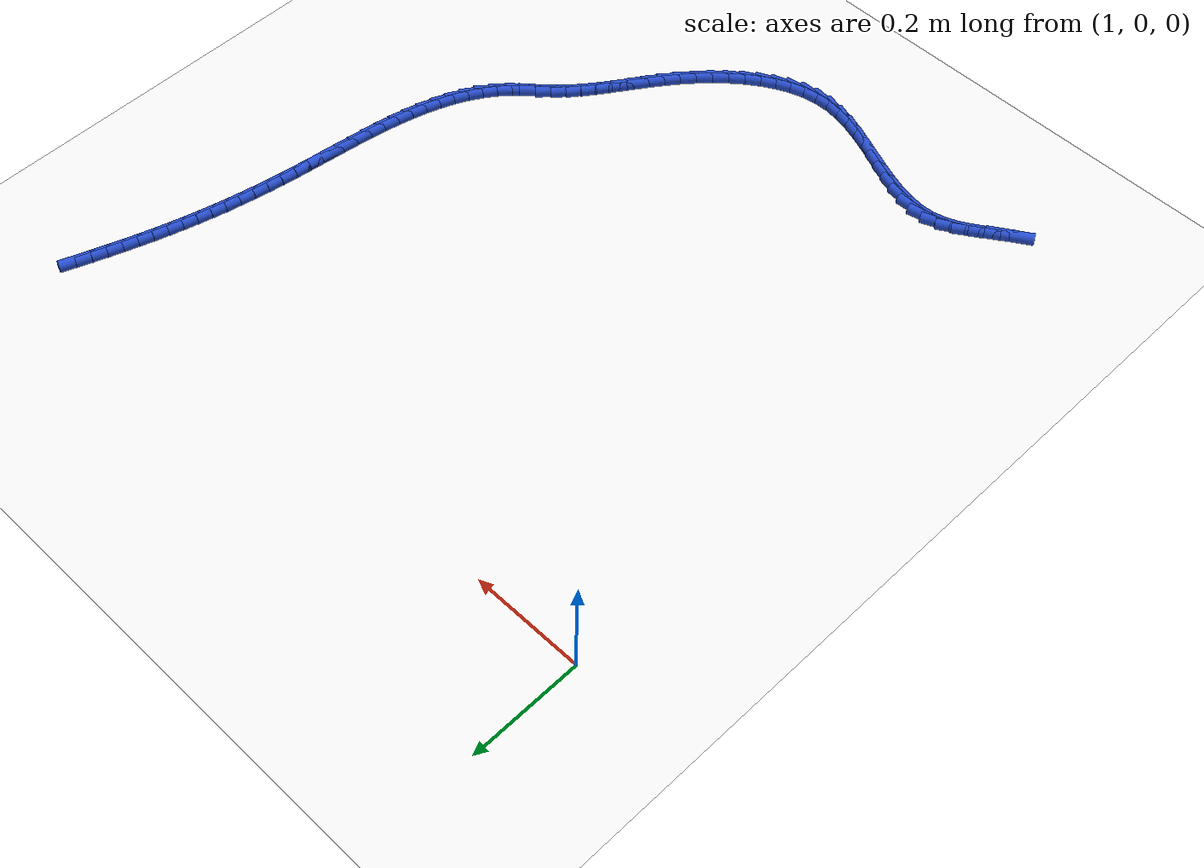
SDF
<sdf version="1.6">
 <world name="default">
  <model name="ground_plane">
   <static>1</static>
   <link name="link">
    <collision name="collision">
     <geometry><plane><normal>0 0 1</normal><size>100 100</size></plane></geometry>
     <surface><friction><ode><mu>100</mu><mu2>50</mu2></ode></friction></surface>
    </collision>
    <visual name="visual">
     <cast_shadows>0</cast_shadows>
     <geometry><plane><normal>0 0 1</normal><size>100 100</size></plane></geometry>
     <material>
      <script><uri>file://media/materials/scripts/gazebo.material</uri><name>Gazebo/WhiteGlow</name></script>
     </material>
    </visual>
   </link>
  </model>
  <model name="line">
   <link name="link_139">
    <pose>2.0839311883430423 0.039502360963267404 0.01 0 1.57 1.2172083180339355</pose>
    <collision name="collision">
     <geometry><cylinder><radius>0.01</radius><length>0.08</length></cylinder></geometry>
    </collision>
    <visual name="visual">
     <material>
      <script><name>Gazebo/Blue</name><uri>file://media/materials/scripts/gazebo.material</uri></script>
     </material>
     <geometry><cylinder><radius>0.01</radius><length>0.08</length></cylinder></geometry>
    </visual>
   </link>
   <link name="link_140">
    <pose>2.074587826958365 0.014188454468545168 0.01 0 1.57 1.228908637623293</pose>
    <collision name="collision">
     <geometry><cylinder><radius>0.01</radius><length>0.08</length></cylinder></geometry>
    </collision>
    <visual name="visual">
     <material>
      <script><name>Gazebo/Blue</name><uri>file://media/materials/scripts/gazebo.material</uri></script>
     </material>
     <geometry><cylinder><radius>0.01</radius><length>0.08</length></cylinder></geometry>
    </visual>
   </link>
   <link name="link_141">
    <pose>2.065661966261659 -0.010893897130642212 0.01 0 1.57 1.2415533934183682</pose>
    <collision name="collision">
     <geometry><cylinder><radius>0.01</radius><length>0.08</length></cylinder></geometry>
    </collision>
    <visual name="visual">
     <material>
      <script><name>Gazebo/Blue</name><uri>file://media/materials/scripts/gazebo.material</uri></script>
     </material>
     <geometry><cylinder><radius>0.01</radius><length>0.08</length></cylinder></geometry>
    </visual>
   </link>
   <link name="link_142">
    <pose>2.057153631445824 -0.035795427142687665 0.01 0 1.57 1.2551022464581947</pose>
    <collision name="collision">
     <geometry><cylinder><radius>0.01</radius><length>0.08</length></cylinder></geometry>
    </collision>
    <visual name="visual">
     <material>
      <script><name>Gazebo/Blue</name><uri>file://media/materials/scripts/gazebo.material</uri></script>
     </material>
     <geometry><cylinder><radius>0.01</radius><length>0.08</length></cylinder></geometry>
    </visual>
   </link>
   <link name="link_143">
    <pose>2.0490628477037536 -0.06056686887598703 0.01 0 1.57 1.269501331391532</pose>
    <collision name="collision">
     <geometry><cylinder><radius>0.01</radius><length>0.08</length></cylinder></geometry>
    </collision>
    <visual name="visual">
     <material>
      <script><name>Gazebo/Blue</name><uri>file://media/materials/scripts/gazebo.material</uri></script>
     </material>
     <geometry><cylinder><radius>0.01</radius><length>0.08</length></cylinder></geometry>
    </visual>
   </link>
   <link name="link_144">
    <pose>2.0413896402283447 -0.08525895563893326 0.01 0 1.57 1.28468347285391</pose>
    <collision name="collision">
     <geometry><cylinder><radius>0.01</radius><length>0.08</length></cylinder></geometry>
    </collision>
    <visual name="visual">
     <material>
      <script><name>Gazebo/Blue</name><uri>file://media/materials/scripts/gazebo.material</uri></script>
     </material>
     <geometry><cylinder><radius>0.01</radius><length>0.08</length></cylinder></geometry>
    </visual>
   </link>
   <link name="link_145">
    <pose>2.034134034212493 -0.10992242073992214 0.01 0 1.57 1.3005688774060336</pose>
    <collision name="collision">
     <geometry><cylinder><radius>0.01</radius><length>0.08</length></cylinder></geometry>
    </collision>
    <visual name="visual">
     <material>
      <script><name>Gazebo/Blue</name><uri>file://media/materials/scripts/gazebo.material</uri></script>
     </material>
     <geometry><cylinder><radius>0.01</radius><length>0.08</length></cylinder></geometry>
    </visual>
   </link>
   <link name="link_146">
    <pose>2.0272960548490957 -0.1346079974873467 0.01 0 1.57 1.3170663153617388</pose>
    <collision name="collision">
     <geometry><cylinder><radius>0.01</radius><length>0.08</length></cylinder></geometry>
    </collision>
    <visual name="visual">
     <material>
      <script><name>Gazebo/Blue</name><uri>file://media/materials/scripts/gazebo.material</uri></script>
     </material>
     <geometry><cylinder><radius>0.01</radius><length>0.08</length></cylinder></geometry>
    </visual>
   </link>
   <link name="link_147">
    <pose>2.0208757273310485 -0.15936641918960273 0.01 0 1.57 1.3340747741797732</pose>
    <collision name="collision">
     <geometry><cylinder><radius>0.01</radius><length>0.08</length></cylinder></geometry>
    </collision>
    <visual name="visual">
     <material>
      <script><name>Gazebo/Blue</name><uri>file://media/materials/scripts/gazebo.material</uri></script>
     </material>
     <geometry><cylinder><radius>0.01</radius><length>0.08</length></cylinder></geometry>
    </visual>
   </link>
   <link name="link_148">
    <pose>2.014873076851247 -0.1842484191550831 0.01 0 1.57 1.351485530064256</pose>
    <collision name="collision">
     <geometry><cylinder><radius>0.01</radius><length>0.08</length></cylinder></geometry>
    </collision>
    <visual name="visual">
     <material>
      <script><name>Gazebo/Blue</name><uri>file://media/materials/scripts/gazebo.material</uri></script>
     </material>
     <geometry><cylinder><radius>0.01</radius><length>0.08</length></cylinder></geometry>
    </visual>
   </link>
   <link name="link_149">
    <pose>2.009288128602588 -0.2093047306921838 0.01 0 1.57 1.3691845509254263</pose>
    <collision name="collision">
     <geometry><cylinder><radius>0.01</radius><length>0.08</length></cylinder></geometry>
    </collision>
    <visual name="visual">
     <material>
      <script><name>Gazebo/Blue</name><uri>file://media/materials/scripts/gazebo.material</uri></script>
     </material>
     <geometry><cylinder><radius>0.01</radius><length>0.08</length></cylinder></geometry>
    </visual>
   </link>
   <link name="link_150">
    <pose>2.0041209077779674 -0.23458608710929763 0.01 0 1.57 1.3869917826238396</pose>
    <collision name="collision">
     <geometry><cylinder><radius>0.01</radius><length>0.08</length></cylinder></geometry>
    </collision>
    <visual name="visual">
     <material>
      <script><name>Gazebo/Blue</name><uri>file://media/materials/scripts/gazebo.material</uri></script>
     </material>
     <geometry><cylinder><radius>0.01</radius><length>0.08</length></cylinder></geometry>
    </visual>
   </link>
   <link name="link_151">
    <pose>1.999369868092684 -0.2601426673180058 0.01 0 1.57 1.4039094417125835</pose>
    <collision name="collision">
     <geometry><cylinder><radius>0.01</radius><length>0.08</length></cylinder></geometry>
    </collision>
    <visual name="visual">
     <material>
      <script><name>Gazebo/Blue</name><uri>file://media/materials/scripts/gazebo.material</uri></script>
     </material>
     <geometry><cylinder><radius>0.01</radius><length>0.08</length></cylinder></geometry>
    </visual>
   </link>
   <link name="link_152">
    <pose>1.9950112716992983 -0.2860168213357964 0.01 0 1.57 1.4192197696473066</pose>
    <collision name="collision">
     <geometry><cylinder><radius>0.01</radius><length>0.08</length></cylinder></geometry>
    </collision>
    <visual name="visual">
     <material>
      <script><name>Gazebo/Blue</name><uri>file://media/materials/scripts/gazebo.material</uri></script>
     </material>
     <geometry><cylinder><radius>0.01</radius><length>0.08</length></cylinder></geometry>
    </visual>
   </link>
   <link name="link_153">
    <pose>1.991004949685243 -0.31224510251453746 0.01 0 1.57 1.4328808185727886</pose>
    <collision name="collision">
     <geometry><cylinder><radius>0.01</radius><length>0.08</length></cylinder></geometry>
    </collision>
    <visual name="visual">
     <material>
      <script><name>Gazebo/Blue</name><uri>file://media/materials/scripts/gazebo.material</uri></script>
     </material>
     <geometry><cylinder><radius>0.01</radius><length>0.08</length></cylinder></geometry>
    </visual>
   </link>
   <link name="link_154">
    <pose>1.987310346479679 -0.3388639277981015 0.01 0 1.57 1.4445927143120671</pose>
    <collision name="collision">
     <geometry><cylinder><radius>0.01</radius><length>0.08</length></cylinder></geometry>
    </collision>
    <visual name="visual">
     <material>
      <script><name>Gazebo/Blue</name><uri>file://media/materials/scripts/gazebo.material</uri></script>
     </material>
     <geometry><cylinder><radius>0.01</radius><length>0.08</length></cylinder></geometry>
    </visual>
   </link>
   <link name="link_155">
    <pose>1.983879989079087 -0.3659006012836262 0.01 0 1.57 1.4512804694159036</pose>
    <collision name="collision">
     <geometry><cylinder><radius>0.01</radius><length>0.08</length></cylinder></geometry>
    </collision>
    <visual name="visual">
     <material>
      <script><name>Gazebo/Blue</name><uri>file://media/materials/scripts/gazebo.material</uri></script>
     </material>
     <geometry><cylinder><radius>0.01</radius><length>0.08</length></cylinder></geometry>
    </visual>
   </link>
   <link name="link_156">
    <pose>1.9805915833133063 -0.39328385960028867 0.01 0 1.57 1.4512712602010862</pose>
    <collision name="collision">
     <geometry><cylinder><radius>0.01</radius><length>0.08</length></cylinder></geometry>
    </collision>
    <visual name="visual">
     <material>
      <script><name>Gazebo/Blue</name><uri>file://media/materials/scripts/gazebo.material</uri></script>
     </material>
     <geometry><cylinder><radius>0.01</radius><length>0.08</length></cylinder></geometry>
    </visual>
   </link>
   <link name="link_157">
    <pose>1.9772770932624175 -0.42088218038029657 0.01 0 1.57 1.4446937278622798</pose>
    <collision name="collision">
     <geometry><cylinder><radius>0.01</radius><length>0.08</length></cylinder></geometry>
    </collision>
    <visual name="visual">
     <material>
      <script><name>Gazebo/Blue</name><uri>file://media/materials/scripts/gazebo.material</uri></script>
     </material>
     <geometry><cylinder><radius>0.01</radius><length>0.08</length></cylinder></geometry>
    </visual>
   </link>
   <link name="link_158">
    <pose>1.9737678266540557 -0.44856317659414086 0.01 0 1.57 1.4315457862522618</pose>
    <collision name="collision">
     <geometry><cylinder><radius>0.01</radius><length>0.08</length></cylinder></geometry>
    </collision>
    <visual name="visual">
     <material>
      <script><name>Gazebo/Blue</name><uri>file://media/materials/scripts/gazebo.material</uri></script>
     </material>
     <geometry><cylinder><radius>0.01</radius><length>0.08</length></cylinder></geometry>
    </visual>
   </link>
   <link name="link_159">
    <pose>1.9698950912158568 -0.47619446121230924 0.01 0 1.57 1.4116783667775232</pose>
    <collision name="collision">
     <geometry><cylinder><radius>0.01</radius><length>0.08</length></cylinder></geometry>
    </collision>
    <visual name="visual">
     <material>
      <script><name>Gazebo/Blue</name><uri>file://media/materials/scripts/gazebo.material</uri></script>
     </material>
     <geometry><cylinder><radius>0.01</radius><length>0.08</length></cylinder></geometry>
    </visual>
   </link>
   <link name="link_160">
    <pose>1.965490194675457 -0.5036436472052921 0.01 0 1.57 1.38480785348811</pose>
    <collision name="collision">
     <geometry><cylinder><radius>0.01</radius><length>0.08</length></cylinder></geometry>
    </collision>
    <visual name="visual">
     <material>
      <script><name>Gazebo/Blue</name><uri>file://media/materials/scripts/gazebo.material</uri></script>
     </material>
     <geometry><cylinder><radius>0.01</radius><length>0.08</length></cylinder></geometry>
    </visual>
   </link>
   <link name="link_161">
    <pose>1.960384444760491 -0.5307783475435797 0.01 0 1.57 1.35053301766989</pose>
    <collision name="collision">
     <geometry><cylinder><radius>0.01</radius><length>0.08</length></cylinder></geometry>
    </collision>
    <visual name="visual">
     <material>
      <script><name>Gazebo/Blue</name><uri>file://media/materials/scripts/gazebo.material</uri></script>
     </material>
     <geometry><cylinder><radius>0.01</radius><length>0.08</length></cylinder></geometry>
    </visual>
   </link>
   <link name="link_162">
    <pose>1.9544091491985944 -0.5574661751976596 0.01 0 1.57 1.3083622424790102</pose>
    <collision name="collision">
     <geometry><cylinder><radius>0.01</radius><length>0.08</length></cylinder></geometry>
    </collision>
    <visual name="visual">
     <material>
      <script><name>Gazebo/Blue</name><uri>file://media/materials/scripts/gazebo.material</uri></script>
     </material>
     <geometry><cylinder><radius>0.01</radius><length>0.08</length></cylinder></geometry>
    </visual>
   </link>
   <link name="link_163">
    <pose>1.9473956157174026 -0.5835747431380227 0.01 0 1.57 1.257759205285677</pose>
    <collision name="collision">
     <geometry><cylinder><radius>0.01</radius><length>0.08</length></cylinder></geometry>
    </collision>
    <visual name="visual">
     <material>
      <script><name>Gazebo/Blue</name><uri>file://media/materials/scripts/gazebo.material</uri></script>
     </material>
     <geometry><cylinder><radius>0.01</radius><length>0.08</length></cylinder></geometry>
    </visual>
   </link>
   <link name="link_164">
    <pose>1.939175152044552 -0.6089716643351574 0.01 0 1.57 1.198217164883188</pose>
    <collision name="collision">
     <geometry><cylinder><radius>0.01</radius><length>0.08</length></cylinder></geometry>
    </collision>
    <visual name="visual">
     <material>
      <script><name>Gazebo/Blue</name><uri>file://media/materials/scripts/gazebo.material</uri></script>
     </material>
     <geometry><cylinder><radius>0.01</radius><length>0.08</length></cylinder></geometry>
    </visual>
   </link>
   <link name="link_165">
    <pose>1.9295790659076775 -0.6335245517595541 0.01 0 1.57 1.1293716974109245</pose>
    <collision name="collision">
     <geometry><cylinder><radius>0.01</radius><length>0.08</length></cylinder></geometry>
    </collision>
    <visual name="visual">
     <material>
      <script><name>Gazebo/Blue</name><uri>file://media/materials/scripts/gazebo.material</uri></script>
     </material>
     <geometry><cylinder><radius>0.01</radius><length>0.08</length></cylinder></geometry>
    </visual>
   </link>
   <link name="link_166">
    <pose>1.918438665034415 -0.657101018381701 0.01 0 1.57 1.0511555967653123</pose>
    <collision name="collision">
     <geometry><cylinder><radius>0.01</radius><length>0.08</length></cylinder></geometry>
    </collision>
    <visual name="visual">
     <material>
      <script><name>Gazebo/Blue</name><uri>file://media/materials/scripts/gazebo.material</uri></script>
     </material>
     <geometry><cylinder><radius>0.01</radius><length>0.08</length></cylinder></geometry>
    </visual>
   </link>
   <link name="link_167">
    <pose>1.9055852571523992 -0.6795686771720888 0.01 0 1.57 0.9639832632329751</pose>
    <collision name="collision">
     <geometry><cylinder><radius>0.01</radius><length>0.08</length></cylinder></geometry>
    </collision>
    <visual name="visual">
     <material>
      <script><name>Gazebo/Blue</name><uri>file://media/materials/scripts/gazebo.material</uri></script>
     </material>
     <geometry><cylinder><radius>0.01</radius><length>0.08</length></cylinder></geometry>
    </visual>
   </link>
   <link name="link_168">
    <pose>1.8908501499892667 -0.7007951411012054 0.01 0 1.57 0.8689238731495903</pose>
    <collision name="collision">
     <geometry><cylinder><radius>0.01</radius><length>0.08</length></cylinder></geometry>
    </collision>
    <visual name="visual">
     <material>
      <script><name>Gazebo/Blue</name><uri>file://media/materials/scripts/gazebo.material</uri></script>
     </material>
     <geometry><cylinder><radius>0.01</radius><length>0.08</length></cylinder></geometry>
    </visual>
   </link>
   <link name="link_169">
    <pose>1.8740646512726526 -0.720648023139542 0.01 0 1.57 0.7753909561541814</pose>
    <collision name="collision">
     <geometry><cylinder><radius>0.01</radius><length>0.08</length></cylinder></geometry>
    </collision>
    <visual name="visual">
     <material>
      <script><name>Gazebo/Blue</name><uri>file://media/materials/scripts/gazebo.material</uri></script>
     </material>
     <geometry><cylinder><radius>0.01</radius><length>0.08</length></cylinder></geometry>
    </visual>
   </link>
   <link name="link_170">
    <pose>1.855228993297616 -0.7391104192970191 0.01 0 1.57 0.7323609396599644</pose>
    <collision name="collision">
     <geometry><cylinder><radius>0.01</radius><length>0.08</length></cylinder></geometry>
    </collision>
    <visual name="visual">
     <material>
      <script><name>Gazebo/Blue</name><uri>file://media/materials/scripts/gazebo.material</uri></script>
     </material>
     <geometry><cylinder><radius>0.01</radius><length>0.08</length></cylinder></geometry>
    </visual>
   </link>
   <link name="link_171">
    <pose>1.8354331494113263 -0.7569104125964771 0.01 0 1.57 0.7566708962191189</pose>
    <collision name="collision">
     <geometry><cylinder><radius>0.01</radius><length>0.08</length></cylinder></geometry>
    </collision>
    <visual name="visual">
     <material>
      <script><name>Gazebo/Blue</name><uri>file://media/materials/scripts/gazebo.material</uri></script>
     </material>
     <geometry><cylinder><radius>0.01</radius><length>0.08</length></cylinder></geometry>
    </visual>
   </link>
   <link name="link_172">
    <pose>1.816198144625114 -0.7750708528292082 0.01 0 1.57 0.8278401100011968</pose>
    <collision name="collision">
     <geometry><cylinder><radius>0.01</radius><length>0.08</length></cylinder></geometry>
    </collision>
    <visual name="visual">
     <material>
      <script><name>Gazebo/Blue</name><uri>file://media/materials/scripts/gazebo.material</uri></script>
     </material>
     <geometry><cylinder><radius>0.01</radius><length>0.08</length></cylinder></geometry>
    </visual>
   </link>
   <link name="link_173">
    <pose>1.798538787003028 -0.7942966279371668 0.01 0 1.57 0.8919616418053585</pose>
    <collision name="collision">
     <geometry><cylinder><radius>0.01</radius><length>0.08</length></cylinder></geometry>
    </collision>
    <visual name="visual">
     <material>
      <script><name>Gazebo/Blue</name><uri>file://media/materials/scripts/gazebo.material</uri></script>
     </material>
     <geometry><cylinder><radius>0.01</radius><length>0.08</length></cylinder></geometry>
    </visual>
   </link>
   <link name="link_174">
    <pose>1.7822293094355186 -0.8145132550511037 0.01 0 1.57 0.939296077555578</pose>
    <collision name="collision">
     <geometry><cylinder><radius>0.01</radius><length>0.08</length></cylinder></geometry>
    </collision>
    <visual name="visual">
     <material>
      <script><name>Gazebo/Blue</name><uri>file://media/materials/scripts/gazebo.material</uri></script>
     </material>
     <geometry><cylinder><radius>0.01</radius><length>0.08</length></cylinder></geometry>
    </visual>
   </link>
   <link name="link_175">
    <pose>1.766857835311422 -0.8355293310890022 0.01 0 1.57 0.9691761593742407</pose>
    <collision name="collision">
     <geometry><cylinder><radius>0.01</radius><length>0.08</length></cylinder></geometry>
    </collision>
    <visual name="visual">
     <material>
      <script><name>Gazebo/Blue</name><uri>file://media/materials/scripts/gazebo.material</uri></script>
     </material>
     <geometry><cylinder><radius>0.01</radius><length>0.08</length></cylinder></geometry>
    </visual>
   </link>
   <link name="link_176">
    <pose>1.7520124880195704 -0.8571534529688474 0.01 0 1.57 0.9816244761853291</pose>
    <collision name="collision">
     <geometry><cylinder><radius>0.01</radius><length>0.08</length></cylinder></geometry>
    </collision>
    <visual name="visual">
     <material>
      <script><name>Gazebo/Blue</name><uri>file://media/materials/scripts/gazebo.material</uri></script>
     </material>
     <geometry><cylinder><radius>0.01</radius><length>0.08</length></cylinder></geometry>
    </visual>
   </link>
   <link name="link_177">
    <pose>1.7372813909487979 -0.8791942176086216 0.01 0 1.57 0.9770722522943226</pose>
    <collision name="collision">
     <geometry><cylinder><radius>0.01</radius><length>0.08</length></cylinder></geometry>
    </collision>
    <visual name="visual">
     <material>
      <script><name>Gazebo/Blue</name><uri>file://media/materials/scripts/gazebo.material</uri></script>
     </material>
     <geometry><cylinder><radius>0.01</radius><length>0.08</length></cylinder></geometry>
    </visual>
   </link>
   <link name="link_178">
    <pose>1.7222526674879393 -0.9014602219263107 0.01 0 1.57 0.9562183129769553</pose>
    <collision name="collision">
     <geometry><cylinder><radius>0.01</radius><length>0.08</length></cylinder></geometry>
    </collision>
    <visual name="visual">
     <material>
      <script><name>Gazebo/Blue</name><uri>file://media/materials/scripts/gazebo.material</uri></script>
     </material>
     <geometry><cylinder><radius>0.01</radius><length>0.08</length></cylinder></geometry>
    </visual>
   </link>
   <link name="link_179">
    <pose>1.7065144410258282 -0.9237600628398972 0.01 0 1.57 0.9200633096442715</pose>
    <collision name="collision">
     <geometry><cylinder><radius>0.01</radius><length>0.08</length></cylinder></geometry>
    </collision>
    <visual name="visual">
     <material>
      <script><name>Gazebo/Blue</name><uri>file://media/materials/scripts/gazebo.material</uri></script>
     </material>
     <geometry><cylinder><radius>0.01</radius><length>0.08</length></cylinder></geometry>
    </visual>
   </link>
   <link name="link_180">
    <pose>1.6896567130948514 -0.945901613139908 0.01 0 1.57 0.8730843867567217</pose>
    <collision name="collision">
     <geometry><cylinder><radius>0.01</radius><length>0.08</length></cylinder></geometry>
    </collision>
    <visual name="visual">
     <material>
      <script><name>Gazebo/Blue</name><uri>file://media/materials/scripts/gazebo.material</uri></script>
     </material>
     <geometry><cylinder><radius>0.01</radius><length>0.08</length></cylinder></geometry>
    </visual>
   </link>
   <link name="link_181">
    <pose>1.6714436668113117 -0.9676255890528471 0.01 0 1.57 0.8208930254303338</pose>
    <collision name="collision">
     <geometry><cylinder><radius>0.01</radius><length>0.08</length></cylinder></geometry>
    </collision>
    <visual name="visual">
     <material>
      <script><name>Gazebo/Blue</name><uri>file://media/materials/scripts/gazebo.material</uri></script>
     </material>
     <geometry><cylinder><radius>0.01</radius><length>0.08</length></cylinder></geometry>
    </visual>
   </link>
   <link name="link_182">
    <pose>1.6519524297008419 -0.9885520495532506 0.01 0 1.57 0.7625476294094867</pose>
    <collision name="collision">
     <geometry><cylinder><radius>0.01</radius><length>0.08</length></cylinder></geometry>
    </collision>
    <visual name="visual">
     <material>
      <script><name>Gazebo/Blue</name><uri>file://media/materials/scripts/gazebo.material</uri></script>
     </material>
     <geometry><cylinder><radius>0.01</radius><length>0.08</length></cylinder></geometry>
    </visual>
   </link>
   <link name="link_183">
    <pose>1.6312927833081425 -1.0082884636984357 0.01 0 1.57 0.6962384206712654</pose>
    <collision name="collision">
     <geometry><cylinder><radius>0.01</radius><length>0.08</length></cylinder></geometry>
    </collision>
    <visual name="visual">
     <material>
      <script><name>Gazebo/Blue</name><uri>file://media/materials/scripts/gazebo.material</uri></script>
     </material>
     <geometry><cylinder><radius>0.01</radius><length>0.08</length></cylinder></geometry>
    </visual>
   </link>
   <link name="link_184">
    <pose>1.6095745091779192 -1.0264423005457184 0.01 0 1.57 0.6198967554123411</pose>
    <collision name="collision">
     <geometry><cylinder><radius>0.01</radius><length>0.08</length></cylinder></geometry>
    </collision>
    <visual name="visual">
     <material>
      <script><name>Gazebo/Blue</name><uri>file://media/materials/scripts/gazebo.material</uri></script>
     </material>
     <geometry><cylinder><radius>0.01</radius><length>0.08</length></cylinder></geometry>
    </visual>
   </link>
   <link name="link_185">
    <pose>1.5869073888548735 -1.042621029152417 0.01 0 1.57 0.5312157515864522</pose>
    <collision name="collision">
     <geometry><cylinder><radius>0.01</radius><length>0.08</length></cylinder></geometry>
    </collision>
    <visual name="visual">
     <material>
      <script><name>Gazebo/Blue</name><uri>file://media/materials/scripts/gazebo.material</uri></script>
     </material>
     <geometry><cylinder><radius>0.01</radius><length>0.08</length></cylinder></geometry>
    </visual>
   </link>
   <link name="link_186">
    <pose>1.5634012038837106 -1.0564321185758474 0.01 0 1.57 0.42781679860569216</pose>
    <collision name="collision">
     <geometry><cylinder><radius>0.01</radius><length>0.08</length></cylinder></geometry>
    </collision>
    <visual name="visual">
     <material>
      <script><name>Gazebo/Blue</name><uri>file://media/materials/scripts/gazebo.material</uri></script>
     </material>
     <geometry><cylinder><radius>0.01</radius><length>0.08</length></cylinder></geometry>
    </visual>
   </link>
   <link name="link_187">
    <pose>1.5391657358091324 -1.0674830378733278 0.01 0 1.57 0.3076807704668015</pose>
    <collision name="collision">
     <geometry><cylinder><radius>0.01</radius><length>0.08</length></cylinder></geometry>
    </collision>
    <visual name="visual">
     <material>
      <script><name>Gazebo/Blue</name><uri>file://media/materials/scripts/gazebo.material</uri></script>
     </material>
     <geometry><cylinder><radius>0.01</radius><length>0.08</length></cylinder></geometry>
    </visual>
   </link>
   <link name="link_188">
    <pose>1.5143107661758433 -1.0753812561021743 0.01 0 1.57 0.1699603321748941</pose>
    <collision name="collision">
     <geometry><cylinder><radius>0.01</radius><length>0.08</length></cylinder></geometry>
    </collision>
    <visual name="visual">
     <material>
      <script><name>Gazebo/Blue</name><uri>file://media/materials/scripts/gazebo.material</uri></script>
     </material>
     <geometry><cylinder><radius>0.01</radius><length>0.08</length></cylinder></geometry>
    </visual>
   </link>
   <link name="link_189">
    <pose>1.488946076528545 -1.0797342423197045 0.01 0 1.57 0.01654464042822524</pose>
    <collision name="collision">
     <geometry><cylinder><radius>0.01</radius><length>0.08</length></cylinder></geometry>
    </collision>
    <visual name="visual">
     <material>
      <script><name>Gazebo/Blue</name><uri>file://media/materials/scripts/gazebo.material</uri></script>
     </material>
     <geometry><cylinder><radius>0.01</radius><length>0.08</length></cylinder></geometry>
    </visual>
   </link>
   <link name="link_190">
    <pose>1.4631812367897798 -1.0801605512267363 0.01 0 1.57 -0.12992205612234045</pose>
    <collision name="collision">
     <geometry><cylinder><radius>0.01</radius><length>0.08</length></cylinder></geometry>
    </collision>
    <visual name="visual">
     <material>
      <script><name>Gazebo/Blue</name><uri>file://media/materials/scripts/gazebo.material</uri></script>
     </material>
     <geometry><cylinder><radius>0.01</radius><length>0.08</length></cylinder></geometry>
    </visual>
   </link>
   <link name="link_191">
    <pose>1.4371167249000172 -1.0767550131193278 0.01 0 1.57 -0.2423718485754162</pose>
    <collision name="collision">
     <geometry><cylinder><radius>0.01</radius><length>0.08</length></cylinder></geometry>
    </collision>
    <visual name="visual">
     <material>
      <script><name>Gazebo/Blue</name><uri>file://media/materials/scripts/gazebo.material</uri></script>
     </material>
     <geometry><cylinder><radius>0.01</radius><length>0.08</length></cylinder></geometry>
    </visual>
   </link>
   <link name="link_192">
    <pose>1.4108406815794992 -1.0702587328754947 0.01 0 1.57 -0.3217413985285233</pose>
    <collision name="collision">
     <geometry><cylinder><radius>0.01</radius><length>0.08</length></cylinder></geometry>
    </collision>
    <visual name="visual">
     <material>
      <script><name>Gazebo/Blue</name><uri>file://media/materials/scripts/gazebo.material</uri></script>
     </material>
     <geometry><cylinder><radius>0.01</radius><length>0.08</length></cylinder></geometry>
    </visual>
   </link>
   <link name="link_193">
    <pose>1.3844403678640531 -1.0614588968781826 0.01 0 1.57 -0.37204153837327114</pose>
    <collision name="collision">
     <geometry><cylinder><radius>0.01</radius><length>0.08</length></cylinder></geometry>
    </collision>
    <visual name="visual">
     <material>
      <script><name>Gazebo/Blue</name><uri>file://media/materials/scripts/gazebo.material</uri></script>
     </material>
     <geometry><cylinder><radius>0.01</radius><length>0.08</length></cylinder></geometry>
    </visual>
   </link>
   <link name="link_194">
    <pose>1.3580030447895068 -1.051142691510338 0.01 0 1.57 -0.39642959493027113</pose>
    <collision name="collision">
     <geometry><cylinder><radius>0.01</radius><length>0.08</length></cylinder></geometry>
    </collision>
    <visual name="visual">
     <material>
      <script><name>Gazebo/Blue</name><uri>file://media/materials/scripts/gazebo.material</uri></script>
     </material>
     <geometry><cylinder><radius>0.01</radius><length>0.08</length></cylinder></geometry>
    </visual>
   </link>
   <link name="link_195">
    <pose>1.3316159733916904 -1.0400973031549063 0.01 0 1.57 -0.3964152727029682</pose>
    <collision name="collision">
     <geometry><cylinder><radius>0.01</radius><length>0.08</length></cylinder></geometry>
    </collision>
    <visual name="visual">
     <material>
      <script><name>Gazebo/Blue</name><uri>file://media/materials/scripts/gazebo.material</uri></script>
     </material>
     <geometry><cylinder><radius>0.01</radius><length>0.08</length></cylinder></geometry>
    </visual>
   </link>
   <link name="link_196">
    <pose>1.305366414706431 -1.0291099181948349 0.01 0 1.57 -0.37160687827187666</pose>
    <collision name="collision">
     <geometry><cylinder><radius>0.01</radius><length>0.08</length></cylinder></geometry>
    </collision>
    <visual name="visual">
     <material>
      <script><name>Gazebo/Blue</name><uri>file://media/materials/scripts/gazebo.material</uri></script>
     </material>
     <geometry><cylinder><radius>0.01</radius><length>0.08</length></cylinder></geometry>
    </visual>
   </link>
   <link name="link_197">
    <pose>1.279341629769558 -1.0189677230130691 0.01 0 1.57 -0.31961048501256045</pose>
    <collision name="collision">
     <geometry><cylinder><radius>0.01</radius><length>0.08</length></cylinder></geometry>
    </collision>
    <visual name="visual">
     <material>
      <script><name>Gazebo/Blue</name><uri>file://media/materials/scripts/gazebo.material</uri></script>
     </material>
     <geometry><cylinder><radius>0.01</radius><length>0.08</length></cylinder></geometry>
    </visual>
   </link>
   <link name="link_198">
    <pose>1.2536288796168995 -1.0104579039925556 0.01 0 1.57 -0.23610622702782383</pose>
    <collision name="collision">
     <geometry><cylinder><radius>0.01</radius><length>0.08</length></cylinder></geometry>
    </collision>
    <visual name="visual">
     <material>
      <script><name>Gazebo/Blue</name><uri>file://media/materials/scripts/gazebo.material</uri></script>
     </material>
     <geometry><cylinder><radius>0.01</radius><length>0.08</length></cylinder></geometry>
    </visual>
   </link>
   <link name="link_199">
    <pose>1.2283154252842845 -1.0043676475162402 0.01 0 1.57 -0.11562643934410638</pose>
    <collision name="collision">
     <geometry><cylinder><radius>0.01</radius><length>0.08</length></cylinder></geometry>
    </collision>
    <visual name="visual">
     <material>
      <script><name>Gazebo/Blue</name><uri>file://media/materials/scripts/gazebo.material</uri></script>
     </material>
     <geometry><cylinder><radius>0.01</radius><length>0.08</length></cylinder></geometry>
    </visual>
   </link>
   <link name="link_200">
    <pose>1.2034885278075407 -1.001484139967069 0.01 0 1.57 0.04575306873382252</pose>
    <collision name="collision">
     <geometry><cylinder><radius>0.01</radius><length>0.08</length></cylinder></geometry>
    </collision>
    <visual name="visual">
     <material>
      <script><name>Gazebo/Blue</name><uri>file://media/materials/scripts/gazebo.material</uri></script>
     </material>
     <geometry><cylinder><radius>0.01</radius><length>0.08</length></cylinder></geometry>
    </visual>
   </link>
   <link name="link_201">
    <pose>1.1792354482224978 -1.002594567727989 0.01 0 1.57 0.24270442254709013</pose>
    <collision name="collision">
     <geometry><cylinder><radius>0.01</radius><length>0.08</length></cylinder></geometry>
    </collision>
    <visual name="visual">
     <material>
      <script><name>Gazebo/Blue</name><uri>file://media/materials/scripts/gazebo.material</uri></script>
     </material>
     <geometry><cylinder><radius>0.01</radius><length>0.08</length></cylinder></geometry>
    </visual>
   </link>
   <link name="link_202">
    <pose>1.1556359251661898 -1.0084374553677653 0.01 0 1.57 0.41973798298640225</pose>
    <collision name="collision">
     <geometry><cylinder><radius>0.01</radius><length>0.08</length></cylinder></geometry>
    </collision>
    <visual name="visual">
     <material>
      <script><name>Gazebo/Blue</name><uri>file://media/materials/scripts/gazebo.material</uri></script>
     </material>
     <geometry><cylinder><radius>0.01</radius><length>0.08</length></cylinder></geometry>
    </visual>
   </link>
   <link name="link_203">
    <pose>1.1326092346856944 -1.0187133074099213 0.01 0 1.57 0.5339610839478994</pose>
    <collision name="collision">
     <geometry><cylinder><radius>0.01</radius><length>0.08</length></cylinder></geometry>
    </collision>
    <visual name="visual">
     <material>
      <script><name>Gazebo/Blue</name><uri>file://media/materials/scripts/gazebo.material</uri></script>
     </material>
     <geometry><cylinder><radius>0.01</radius><length>0.08</length></cylinder></geometry>
    </visual>
   </link>
   <link name="link_204">
    <pose>1.109920868795239 -1.0321278114005612 0.01 0 1.57 0.5928392605053827</pose>
    <collision name="collision">
     <geometry><cylinder><radius>0.01</radius><length>0.08</length></cylinder></geometry>
    </collision>
    <visual name="visual">
     <material>
      <script><name>Gazebo/Blue</name><uri>file://media/materials/scripts/gazebo.material</uri></script>
     </material>
     <geometry><cylinder><radius>0.01</radius><length>0.08</length></cylinder></geometry>
    </visual>
   </link>
   <link name="link_205">
    <pose>1.0873301335784542 -1.0473466385806744 0.01 0 1.57 0.6040574937976922</pose>
    <collision name="collision">
     <geometry><cylinder><radius>0.01</radius><length>0.08</length></cylinder></geometry>
    </collision>
    <visual name="visual">
     <material>
      <script><name>Gazebo/Blue</name><uri>file://media/materials/scripts/gazebo.material</uri></script>
     </material>
     <geometry><cylinder><radius>0.01</radius><length>0.08</length></cylinder></geometry>
    </visual>
   </link>
   <link name="link_206">
    <pose>1.0645963351189716 -1.063035460191248 0.01 0 1.57 0.5702103379867727</pose>
    <collision name="collision">
     <geometry><cylinder><radius>0.01</radius><length>0.08</length></cylinder></geometry>
    </collision>
    <visual name="visual">
     <material>
      <script><name>Gazebo/Blue</name><uri>file://media/materials/scripts/gazebo.material</uri></script>
     </material>
     <geometry><cylinder><radius>0.01</radius><length>0.08</length></cylinder></geometry>
    </visual>
   </link>
  </model>
 </world>
</sdf>
